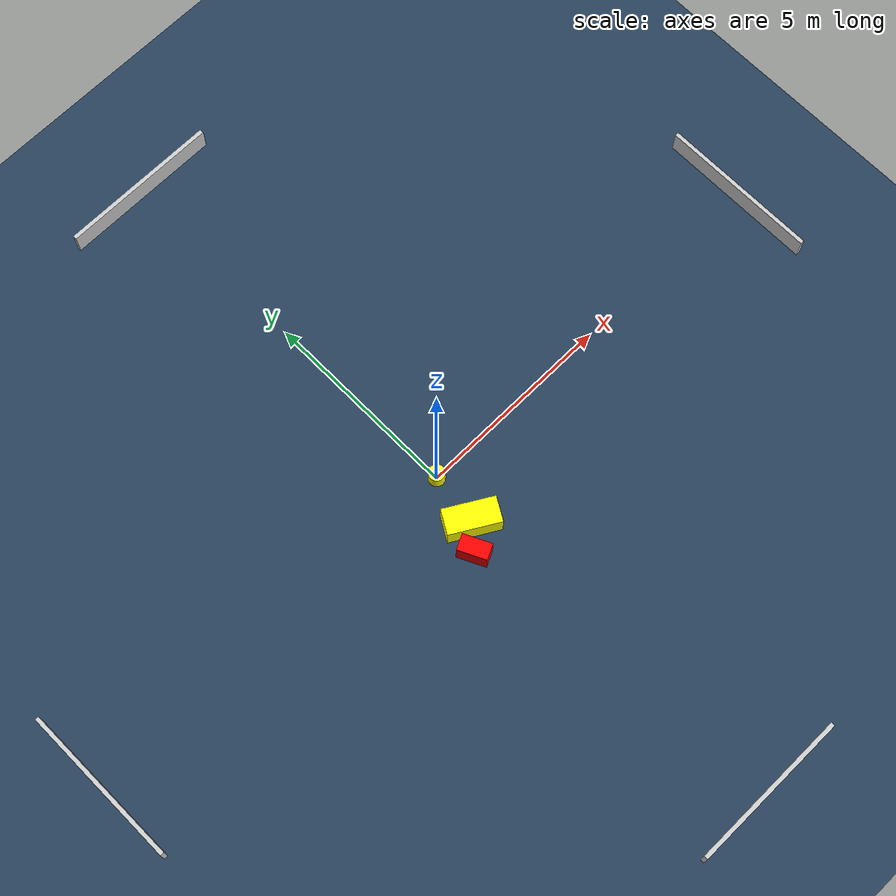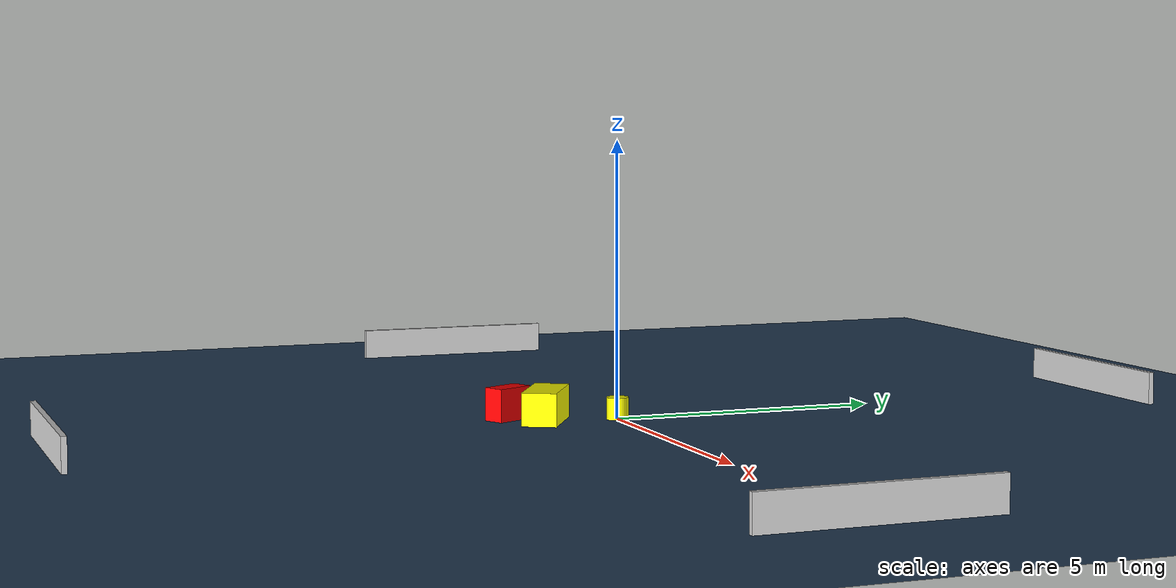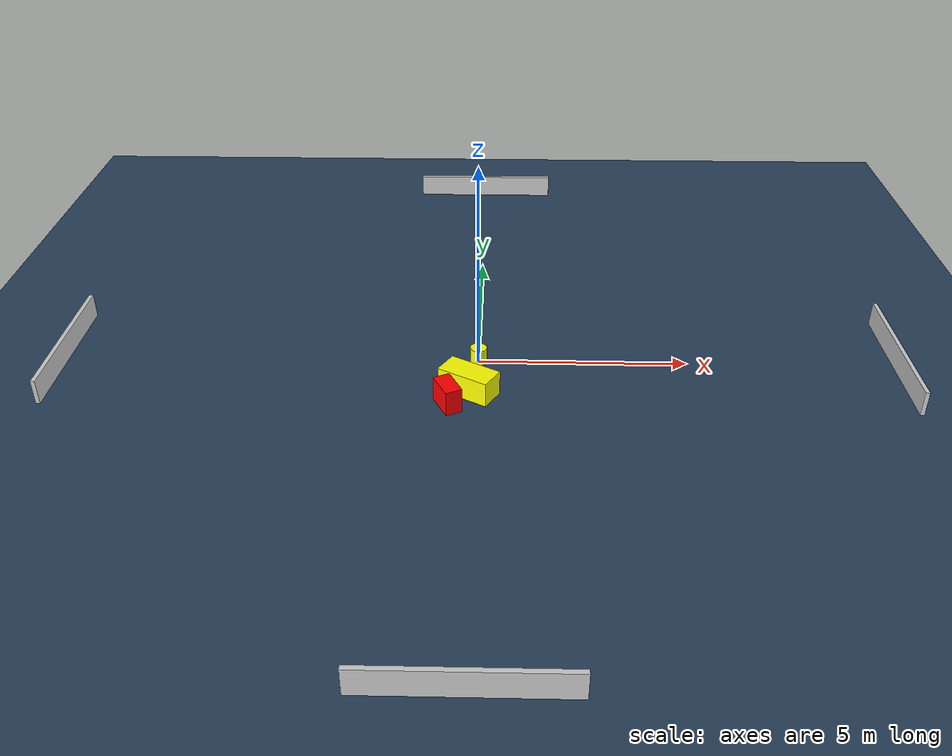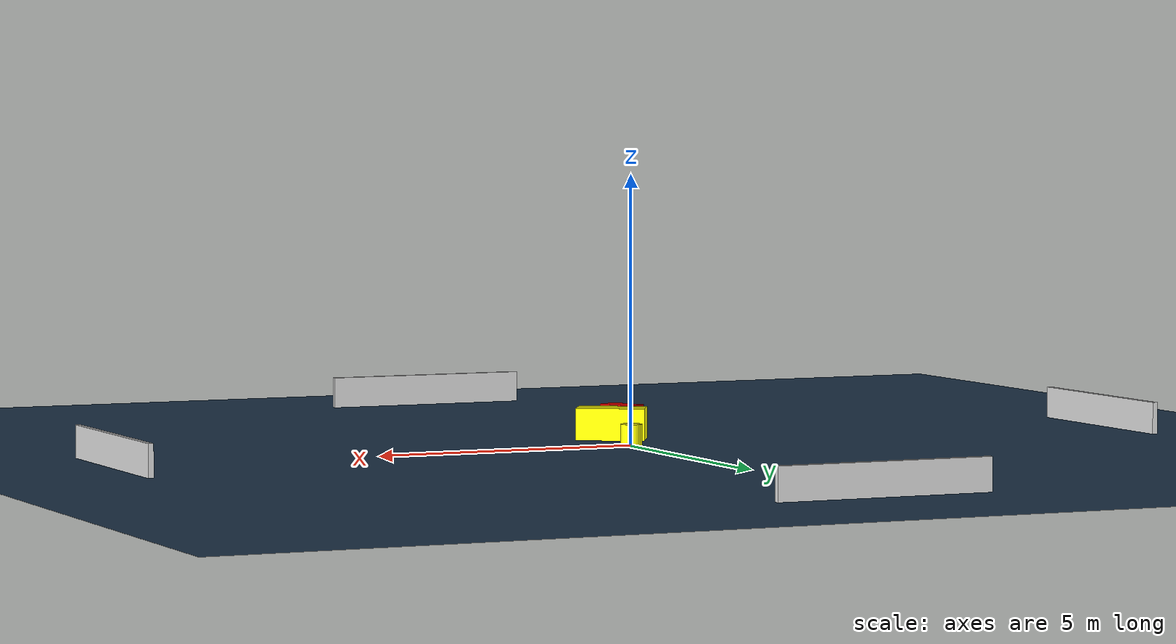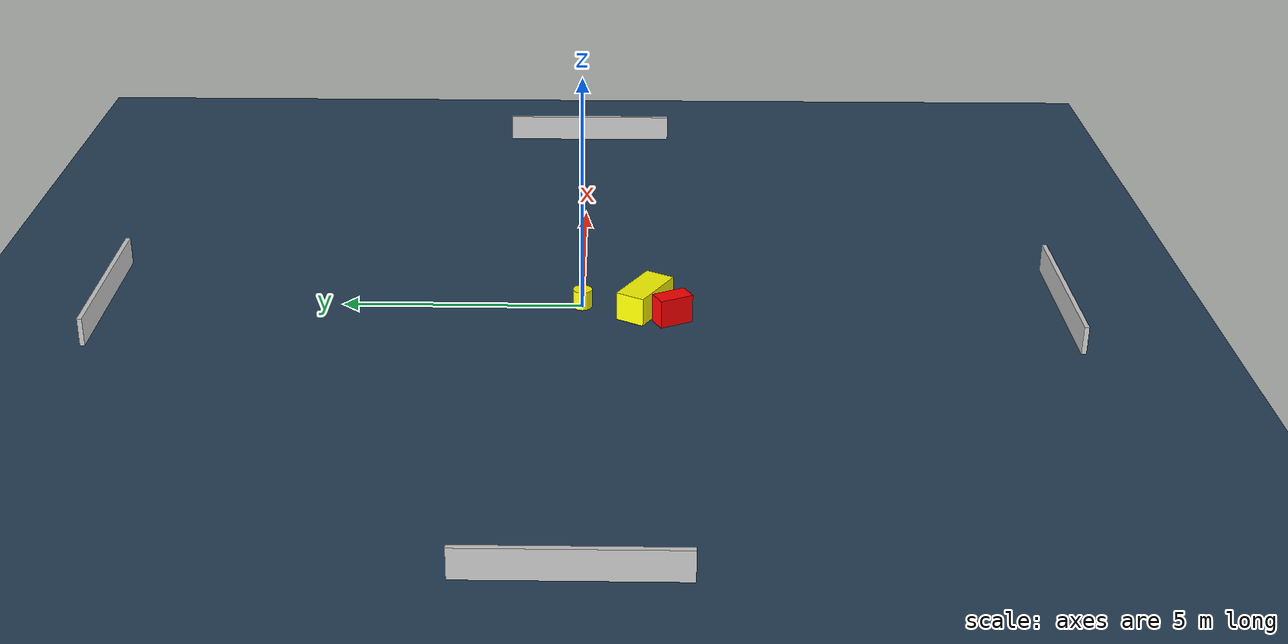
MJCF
<?xml version="1.0" ?>
<mujoco model="generated_environment">
  <option timestep="0.01" integrator="RK4" cone="elliptic"/>
  <default>
    <geom density="1"/>
  </default>
  <asset>
    <texture builtin="gradient" height="3072" name="skybox" rgb1="0.3 0.5 0.7" rgb2="0 0 0" type="skybox" width="512"/>
    <texture builtin="checker" height="300" name="groundplane" rgb1="0.2 0.3 0.4" rgb2="0.1 0.2 0.3" type="2d" width="300"/>
    <material name="groundplane" reflectance="0.2" texrepeat="5 5" texture="groundplane"/>
  </asset>
  <worldbody>
    <light dir="0 0 -1" directional="true" pos="0 0 1.5"/>
    <geom condim="3" friction="0.5 0.005 0.001" material="groundplane" name="floor" pos="0 0 0" size="0 0 0.05" type="plane"/>
    <body name="walls">
      <geom name="wall_1" condim="4" pos="-10.0 0.0 0.3" rgba="0.800000011920929 0.800000011920929 0.800000011920929 1.0" size="0.05 2.0 0.3" type="box"/>
      <geom name="wall_2" condim="4" pos="10.0 0.0 0.3" rgba="0.800000011920929 0.800000011920929 0.800000011920929 1.0" size="0.05 2.0 0.3" type="box"/>
      <geom name="wall_3" condim="4" pos="0.0 -10.0 0.3" rgba="0.800000011920929 0.800000011920929 0.800000011920929 1.0" size="2.0 0.05 0.3" type="box"/>
      <geom name="wall_4" condim="4" pos="0.0 10.0 0.3" rgba="0.800000011920929 0.800000011920929 0.800000011920929 1.0" size="2.0 0.05 0.3" type="box"/>
    </body>
    <body name="robot">
      <joint name="joint_x" type="slide" pos="0 0 0" axis="1 0 0"/>
      <joint name="joint_y" type="slide" pos="0 0 0" axis="0 1 0"/>
      <geom name="robot" type="cylinder" pos="0.0 0.0 0.2" size="0.2 0.2 0.0" mass="5.0" friction="1.0 0.005 0.0001" condim="4" rgba="1.0 1.0 0.0 1.0"/>
    </body>
    <body name="obstacle_1_movable">
      <geom name="obstacle_1_movable" condim="4" pos="-0.19378403211127174 -1.3025391497852108 0.3" euler="0 0 59.63636363700627" friction="0.0 0.005 0.001" rgba="1.0 1.0 0.0 1.0" size="0.3149327506842873 0.6423614988414615 0.3" type="box" mass="0.1"/>
      <joint type="free"/>
    </body>
    <body name="obstacle_2_static">
      <geom name="obstacle_2_static" condim="4" pos="-0.6600754454290267 -1.8581357819699456 0.3" euler="0 0 296.24929544443955" friction="0.0 0.005 0.001" rgba="1.0 0.0 0.0 1.0" size="0.3622872133876329 0.20027836697461127 0.3" type="box"/>
    </body>
  </worldbody>
  <actuator>
    <motor name="actuator_x" joint="joint_x" gear="1" ctrlrange="-1 1"/>
    <motor name="actuator_y" joint="joint_y" gear="1" ctrlrange="-1 1"/>
  </actuator>
</mujoco>
